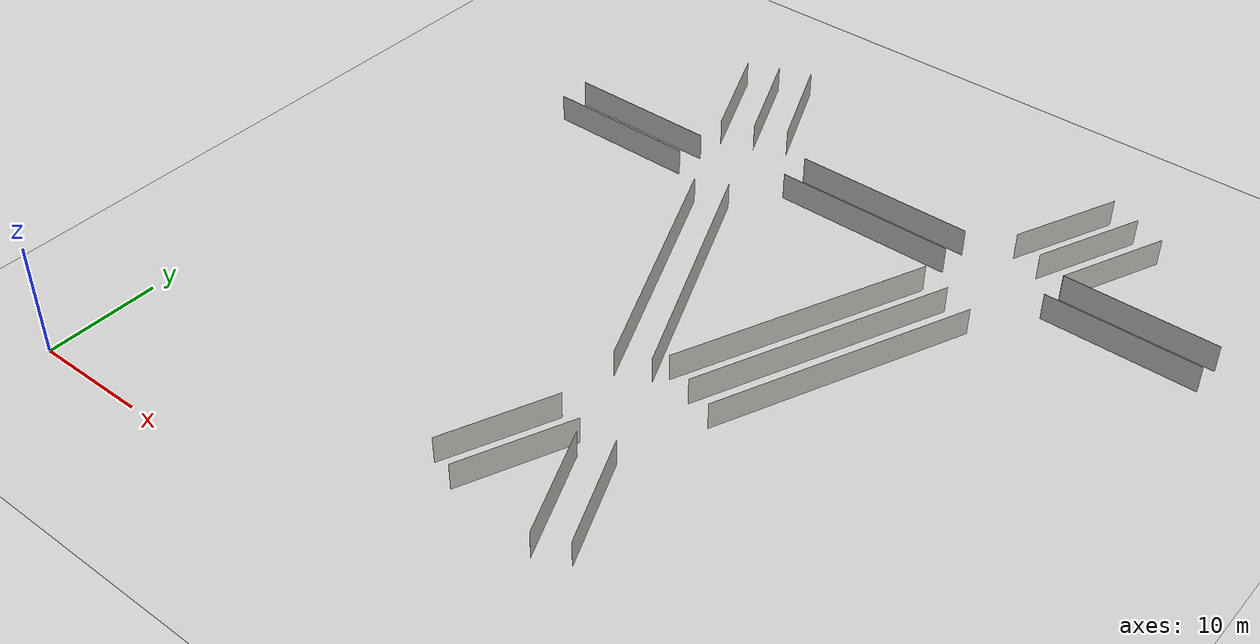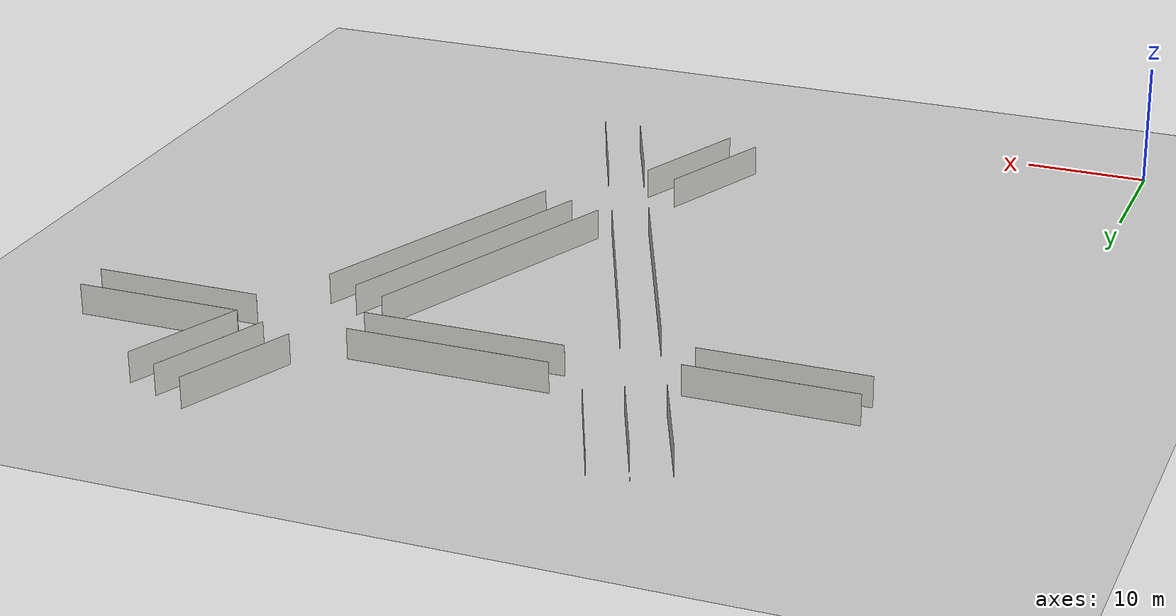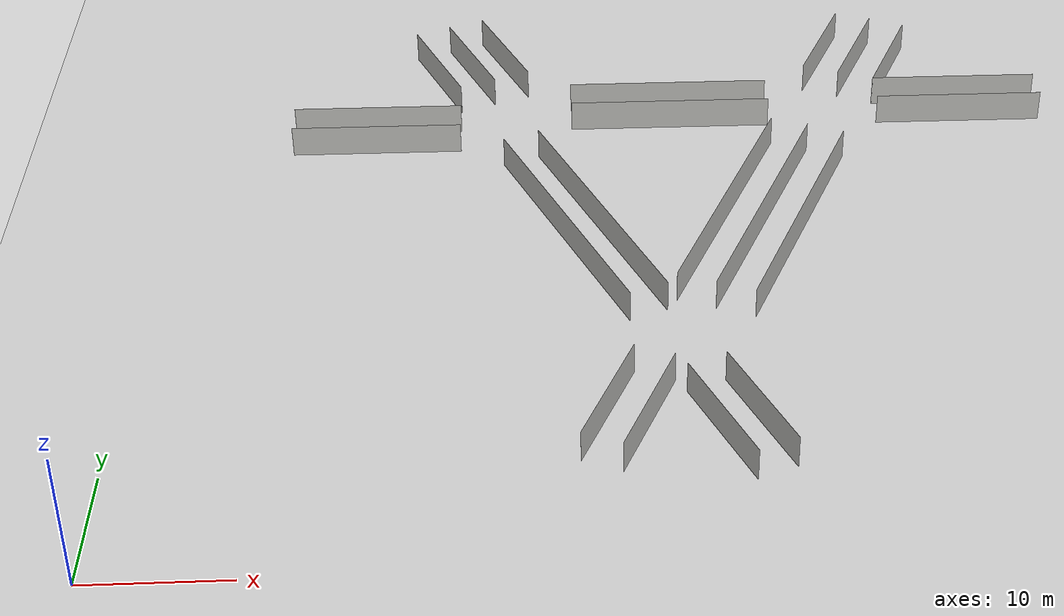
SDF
<sdf version="1.6">
 <world name="default">
  <light name="sun" type="directional">
   <pose>0 0 10 0 -0 0</pose>
   <diffuse>0.8 0.8 0.8 1</diffuse>
   <specular>0.1 0.1 0.1 1</specular>
   <attenuation>
    <range>1000</range>
    <constant>0.9</constant>
    <linear>0.01</linear>
    <quadratic>0.001</quadratic>
   </attenuation>
   <direction>-0.5 0.5 -1</direction>
  </light>
  <model name="ground_plane">
   <static>1</static>
   <link name="link">
    <collision name="collision">
     <geometry><plane><normal>0 0 1</normal><size>100 100</size></plane></geometry>
     <surface><friction><ode><mu>100</mu><mu2>50</mu2></ode></friction></surface>
    </collision>
    <visual name="visual">
     <cast_shadows>0</cast_shadows>
     <geometry><plane><normal>0 0 1</normal><size>100 100</size></plane></geometry>
     <material>
      <script><uri>file://media/materials/scripts/gazebo.material</uri><name>Gazebo/Grey</name></script>
     </material>
    </visual>
   </link>
  </model>
  <gravity>0 0 -9.8</gravity>
  <magnetic_field>6e-06 2.3e-05 -4.2e-05</magnetic_field>
  <atmosphere type="adiabatic"/>
  <physics name="default_physics" default="0" type="ode">
   <max_step_size>0.001</max_step_size>
   <real_time_factor>1</real_time_factor>
   <real_time_update_rate>1000</real_time_update_rate>
  </physics>
  <scene><ambient>0.4 0.4 0.4 1</ambient><background>0.7 0.7 0.7 1</background><shadows>1</shadows></scene>
  <spherical_coordinates>
   <surface_model>EARTH_WGS84</surface_model>
   <latitude_deg>0</latitude_deg>
   <longitude_deg>0</longitude_deg>
   <elevation>0</elevation>
   <heading_deg>0</heading_deg>
  </spherical_coordinates>
  <model name="EMS_T1">
   <pose>43.7495 13.8745 0 0 -0 0</pose>
   <link name="Wall_0">
    <collision name="Wall_0_Collision">
     <geometry><box><size>10.2688 0.001 2.5</size></box></geometry>
     <pose>0 0 1.25 0 -0 0</pose>
    </collision>
    <visual name="Wall_0_Visual">
     <pose>0 0 1.25 0 -0 0</pose>
     <geometry><box><size>10.2688 0.001 2.5</size></box></geometry>
     <material>
      <script><uri>file://media/materials/scripts/gazebo.material</uri><name>Gazebo/CeilingTiled</name></script>
      <ambient>0.435294 0.796078 0.67451 1</ambient>
     </material>
    </visual>
    <pose>0 0 0 0 -0 1.9706</pose>
   </link>
   <static>1</static>
  </model>
  <model name="EMS_T1_clone">
   <pose>40.9866 12.7073 0 0 -0 0</pose>
   <link name="Wall_0">
    <collision name="Wall_0_Collision">
     <geometry><box><size>10.2688 0.001 2.5</size></box></geometry>
     <pose>0 0 1.25 0 -0 0</pose>
    </collision>
    <visual name="Wall_0_Visual">
     <pose>0 0 1.25 0 -0 0</pose>
     <geometry><box><size>10.2688 0.001 2.5</size></box></geometry>
     <material>
      <script><uri>file://media/materials/scripts/gazebo.material</uri><name>Gazebo/CeilingTiled</name></script>
      <ambient>0.435294 0.796078 0.67451 1</ambient>
     </material>
    </visual>
    <pose>0 0 0 0 -0 1.9706</pose>
   </link>
   <static>1</static>
  </model>
  <model name="EMS_T2">
   <pose>33.7245 37.6245 0 0 -0 0</pose>
   <link name="Wall_2">
    <collision name="Wall_2_Collision">
     <geometry><box><size>23.2878 0.001 2.5</size></box></geometry>
     <pose>0 0 1.25 0 -0 0</pose>
    </collision>
    <visual name="Wall_2_Visual">
     <pose>0 0 1.25 0 -0 0</pose>
     <geometry><box><size>23.2878 0.001 2.5</size></box></geometry>
     <material>
      <script><uri>file://media/materials/scripts/gazebo.material</uri><name>Gazebo/CeilingTiled</name></script>
      <ambient>0.435294 0.796078 0.67451 1</ambient>
     </material>
    </visual>
    <pose>1e-06 0 0 0 -0 1.96997</pose>
   </link>
   <static>1</static>
  </model>
  <model name="EMS_T2_clone">
   <pose>30.9609 36.459 0 0 -0 0</pose>
   <link name="Wall_2">
    <collision name="Wall_2_Collision">
     <geometry><box><size>23.2878 0.001 2.5</size></box></geometry>
     <pose>0 0 1.25 0 -0 0</pose>
    </collision>
    <visual name="Wall_2_Visual">
     <pose>0 0 1.25 0 -0 0</pose>
     <geometry><box><size>23.2878 0.001 2.5</size></box></geometry>
     <material>
      <script><uri>file://media/materials/scripts/gazebo.material</uri><name>Gazebo/CeilingTiled</name></script>
      <ambient>0.435294 0.796078 0.67451 1</ambient>
     </material>
    </visual>
    <pose>1e-06 0 0 0 -0 1.96997</pose>
   </link>
   <static>1</static>
  </model>
  <model name="EMS_T3">
   <pose>23.7245 61.2495 0 0 -0 0</pose>
   <link name="Wall_4">
    <collision name="Wall_4_Collision">
     <geometry><box><size>10.0198 0.001 2.5</size></box></geometry>
     <pose>0 0 1.25 0 -0 0</pose>
    </collision>
    <visual name="Wall_4_Visual">
     <pose>0 0 1.25 0 -0 0</pose>
     <geometry><box><size>10.0198 0.001 2.5</size></box></geometry>
     <material>
      <script><uri>file://media/materials/scripts/gazebo.material</uri><name>Gazebo/CeilingTiled</name></script>
      <ambient>0.435294 0.796078 0.67451 1</ambient>
     </material>
    </visual>
    <pose>0 -2e-06 0 0 -0 1.9733</pose>
   </link>
   <static>1</static>
  </model>
  <model name="EMS_T3_clone">
   <pose>20.9647 60.0749 0 0 -0 0</pose>
   <link name="Wall_4">
    <collision name="Wall_4_Collision">
     <geometry><box><size>10.0198 0.001 2.5</size></box></geometry>
     <pose>0 0 1.25 0 -0 0</pose>
    </collision>
    <visual name="Wall_4_Visual">
     <pose>0 0 1.25 0 -0 0</pose>
     <geometry><box><size>10.0198 0.001 2.5</size></box></geometry>
     <material>
      <script><uri>file://media/materials/scripts/gazebo.material</uri><name>Gazebo/CeilingTiled</name></script>
      <ambient>0.435294 0.796078 0.67451 1</ambient>
     </material>
    </visual>
    <pose>0 -2e-06 0 0 -0 1.9733</pose>
   </link>
   <static>1</static>
  </model>
  <model name="EMS_T3_clone_0">
   <pose>26.4853 62.4251 0 0 -0 0</pose>
   <link name="Wall_4">
    <collision name="Wall_4_Collision">
     <geometry><box><size>10.0198 0.001 2.5</size></box></geometry>
     <pose>0 0 1.25 0 -0 0</pose>
    </collision>
    <visual name="Wall_4_Visual">
     <pose>0 0 1.25 0 -0 0</pose>
     <geometry><box><size>10.0198 0.001 2.5</size></box></geometry>
     <material>
      <script><uri>file://media/materials/scripts/gazebo.material</uri><name>Gazebo/CeilingTiled</name></script>
      <ambient>0.435294 0.796078 0.67451 1</ambient>
     </material>
    </visual>
    <pose>0 -2e-06 0 0 -0 1.9733</pose>
   </link>
   <static>1</static>
  </model>
  <model name="EMS_T5">
   <pose>16.225 52.5 0 0 -0 0</pose>
   <link name="Wall_6">
    <collision name="Wall_6_Collision">
     <geometry><box><size>13.45 0.001 2.5</size></box></geometry>
     <pose>0 0 1.25 0 -0 0</pose>
    </collision>
    <visual name="Wall_6_Visual">
     <pose>0 0 1.25 0 -0 0</pose>
     <geometry><box><size>13.45 0.001 2.5</size></box></geometry>
     <material>
      <script><uri>file://media/materials/scripts/gazebo.material</uri><name>Gazebo/CeilingTiled</name></script>
      <ambient>0.435294 0.796078 0.67451 1</ambient>
     </material>
    </visual>
    <pose>0 0 0 0 -0 3.14159</pose>
   </link>
   <static>1</static>
  </model>
  <model name="EMS_T5_clone">
   <pose>16.225 49.5 0 0 -0 0</pose>
   <link name="Wall_6">
    <collision name="Wall_6_Collision">
     <geometry><box><size>13.45 0.001 2.5</size></box></geometry>
     <pose>0 0 1.25 0 -0 0</pose>
    </collision>
    <visual name="Wall_6_Visual">
     <pose>0 0 1.25 0 -0 0</pose>
     <geometry><box><size>13.45 0.001 2.5</size></box></geometry>
     <material>
      <script><uri>file://media/materials/scripts/gazebo.material</uri><name>Gazebo/CeilingTiled</name></script>
      <ambient>0.435294 0.796078 0.67451 1</ambient>
     </material>
    </visual>
    <pose>0 0 0 0 -0 3.14159</pose>
   </link>
   <static>1</static>
  </model>
  <model name="EMS_T4">
   <pose>36.2495 13.8745 0 0 -0 0</pose>
   <link name="Wall_8">
    <collision name="Wall_8_Collision">
     <geometry><box><size>10.2688 0.001 2.5</size></box></geometry>
     <pose>0 0 1.25 0 -0 0</pose>
    </collision>
    <visual name="Wall_8_Visual">
     <pose>0 0 1.25 0 -0 0</pose>
     <geometry><box><size>10.2688 0.001 2.5</size></box></geometry>
     <material>
      <script><uri>file://media/materials/scripts/gazebo.material</uri><name>Gazebo/CeilingTiled</name></script>
      <ambient>0.435294 0.796078 0.67451 1</ambient>
     </material>
    </visual>
    <pose>0 0 0 0 -0 1.17099</pose>
   </link>
   <static>1</static>
  </model>
  <model name="EMS_T4_clone">
   <pose>33.4866 15.0427 0 0 -0 0</pose>
   <link name="Wall_8">
    <collision name="Wall_8_Collision">
     <geometry><box><size>10.2688 0.001 2.5</size></box></geometry>
     <pose>0 0 1.25 0 -0 0</pose>
    </collision>
    <visual name="Wall_8_Visual">
     <pose>0 0 1.25 0 -0 0</pose>
     <geometry><box><size>10.2688 0.001 2.5</size></box></geometry>
     <material>
      <script><uri>file://media/materials/scripts/gazebo.material</uri><name>Gazebo/CeilingTiled</name></script>
      <ambient>0.435294 0.796078 0.67451 1</ambient>
     </material>
    </visual>
    <pose>0 0 0 0 -0 1.17099</pose>
   </link>
   <static>1</static>
  </model>
  <model name="EMS_T6">
   <pose>46.2745 37.6245 0 0 -0 0</pose>
   <link name="Wall_10">
    <collision name="Wall_10_Collision">
     <geometry><box><size>23.2878 0.001 2.5</size></box></geometry>
     <pose>0 0 1.25 0 -0 0</pose>
    </collision>
    <visual name="Wall_10_Visual">
     <pose>0 0 1.25 0 -0 0</pose>
     <geometry><box><size>23.2878 0.001 2.5</size></box></geometry>
     <material>
      <script><uri>file://media/materials/scripts/gazebo.material</uri><name>Gazebo/CeilingTiled</name></script>
      <ambient>0.435294 0.796078 0.67451 1</ambient>
     </material>
    </visual>
    <pose>0 0 0 0 -0 1.17162</pose>
   </link>
   <static>1</static>
  </model>
  <model name="EMS_T6_clone">
   <pose>43.5109 38.791 0 0 -0 0</pose>
   <link name="Wall_10">
    <collision name="Wall_10_Collision">
     <geometry><box><size>23.2878 0.001 2.5</size></box></geometry>
     <pose>0 0 1.25 0 -0 0</pose>
    </collision>
    <visual name="Wall_10_Visual">
     <pose>0 0 1.25 0 -0 0</pose>
     <geometry><box><size>23.2878 0.001 2.5</size></box></geometry>
     <material>
      <script><uri>file://media/materials/scripts/gazebo.material</uri><name>Gazebo/CeilingTiled</name></script>
      <ambient>0.435294 0.796078 0.67451 1</ambient>
     </material>
    </visual>
    <pose>0 0 0 0 -0 1.17162</pose>
   </link>
   <static>1</static>
  </model>
  <model name="EMS_T7">
   <pose>56.2745 61.2495 0 0 -0 0</pose>
   <link name="Wall_12">
    <collision name="Wall_12_Collision">
     <geometry><box><size>10.0198 0.001 2.5</size></box></geometry>
     <pose>0 0 1.25 0 -0 0</pose>
    </collision>
    <visual name="Wall_12_Visual">
     <pose>0 0 1.25 0 -0 0</pose>
     <geometry><box><size>10.0198 0.001 2.5</size></box></geometry>
     <material>
      <script><uri>file://media/materials/scripts/gazebo.material</uri><name>Gazebo/CeilingTiled</name></script>
      <ambient>0.435294 0.796078 0.67451 1</ambient>
     </material>
    </visual>
    <pose>0 -2e-06 0 0 -0 1.16829</pose>
   </link>
   <static>1</static>
  </model>
  <model name="EMS_T7_clone">
   <pose>53.5147 62.4251 0 0 -0 0</pose>
   <link name="Wall_12">
    <collision name="Wall_12_Collision">
     <geometry><box><size>10.0198 0.001 2.5</size></box></geometry>
     <pose>0 0 1.25 0 -0 0</pose>
    </collision>
    <visual name="Wall_12_Visual">
     <pose>0 0 1.25 0 -0 0</pose>
     <geometry><box><size>10.0198 0.001 2.5</size></box></geometry>
     <material>
      <script><uri>file://media/materials/scripts/gazebo.material</uri><name>Gazebo/CeilingTiled</name></script>
      <ambient>0.435294 0.796078 0.67451 1</ambient>
     </material>
    </visual>
    <pose>0 -2e-06 0 0 -0 1.16829</pose>
   </link>
   <static>1</static>
  </model>
  <model name="EMS_T7_clone_0">
   <pose>59.0353 60.0749 0 0 -0 0</pose>
   <link name="Wall_12">
    <collision name="Wall_12_Collision">
     <geometry><box><size>10.0198 0.001 2.5</size></box></geometry>
     <pose>0 0 1.25 0 -0 0</pose>
    </collision>
    <visual name="Wall_12_Visual">
     <pose>0 0 1.25 0 -0 0</pose>
     <geometry><box><size>10.0198 0.001 2.5</size></box></geometry>
     <material>
      <script><uri>file://media/materials/scripts/gazebo.material</uri><name>Gazebo/CeilingTiled</name></script>
      <ambient>0.435294 0.796078 0.67451 1</ambient>
     </material>
    </visual>
    <pose>0 -2e-06 0 0 -0 1.16829</pose>
   </link>
   <static>1</static>
  </model>
  <model name="EMX_T8">
   <pose>63.775 52.5 0 0 -0 0</pose>
   <link name="Wall_14">
    <collision name="Wall_14_Collision">
     <geometry><box><size>13.45 0.001 2.5</size></box></geometry>
     <pose>0 0 1.25 0 -0 0</pose>
    </collision>
    <visual name="Wall_14_Visual">
     <pose>0 0 1.25 0 -0 0</pose>
     <geometry><box><size>13.45 0.001 2.5</size></box></geometry>
     <material>
      <script><uri>file://media/materials/scripts/gazebo.material</uri><name>Gazebo/CeilingTiled</name></script>
      <ambient>0.435294 0.796078 0.67451 1</ambient>
     </material>
    </visual>
   </link>
   <static>1</static>
  </model>
  <model name="EMX_T8_clone">
   <pose>63.775 55.5 0 0 -0 0</pose>
   <link name="Wall_14">
    <collision name="Wall_14_Collision">
     <geometry><box><size>13.45 0.001 2.5</size></box></geometry>
     <pose>0 0 1.25 0 -0 0</pose>
    </collision>
    <visual name="Wall_14_Visual">
     <pose>0 0 1.25 0 -0 0</pose>
     <geometry><box><size>13.45 0.001 2.5</size></box></geometry>
     <material>
      <script><uri>file://media/materials/scripts/gazebo.material</uri><name>Gazebo/CeilingTiled</name></script>
      <ambient>0.435294 0.796078 0.67451 1</ambient>
     </material>
    </visual>
   </link>
   <static>1</static>
  </model>
  <model name="EMX_T9">
   <pose>40 52.5 0 0 -0 0</pose>
   <link name="Wall_16">
    <collision name="Wall_16_Collision">
     <geometry><box><size>16.1 0.001 2.5</size></box></geometry>
     <pose>0 0 1.25 0 -0 0</pose>
    </collision>
    <visual name="Wall_16_Visual">
     <pose>0 0 1.25 0 -0 0</pose>
     <geometry><box><size>16.1 0.001 2.5</size></box></geometry>
     <material>
      <script><uri>file://media/materials/scripts/gazebo.material</uri><name>Gazebo/CeilingTiled</name></script>
      <ambient>0.435294 0.796078 0.67451 1</ambient>
     </material>
    </visual>
   </link>
   <static>1</static>
  </model>
  <model name="EMX_T9_clone">
   <pose>40 55.5 0 0 -0 0</pose>
   <link name="Wall_16">
    <collision name="Wall_16_Collision">
     <geometry><box><size>16.1 0.001 2.5</size></box></geometry>
     <pose>0 0 1.25 0 -0 0</pose>
    </collision>
    <visual name="Wall_16_Visual">
     <pose>0 0 1.25 0 -0 0</pose>
     <geometry><box><size>16.1 0.001 2.5</size></box></geometry>
     <material>
      <script><uri>file://media/materials/scripts/gazebo.material</uri><name>Gazebo/CeilingTiled</name></script>
      <ambient>0.435294 0.796078 0.67451 1</ambient>
     </material>
    </visual>
   </link>
   <static>1</static>
  </model>
  <model name="EMS_T6_clone_0">
   <pose>49.0391 36.459 0 0 -0 0</pose>
   <link name="Wall_10">
    <collision name="Wall_10_Collision">
     <geometry><box><size>23.2878 0.001 2.5</size></box></geometry>
     <pose>0 0 1.25 0 -0 0</pose>
    </collision>
    <visual name="Wall_10_Visual">
     <pose>0 0 1.25 0 -0 0</pose>
     <geometry><box><size>23.2878 0.001 2.5</size></box></geometry>
     <material>
      <script><uri>file://media/materials/scripts/gazebo.material</uri><name>Gazebo/CeilingTiled</name></script>
      <ambient>0.435294 0.796078 0.67451 1</ambient>
     </material>
    </visual>
    <pose>0 0 0 0 -0 1.17162</pose>
   </link>
   <static>1</static>
  </model>
 </world>
</sdf>
